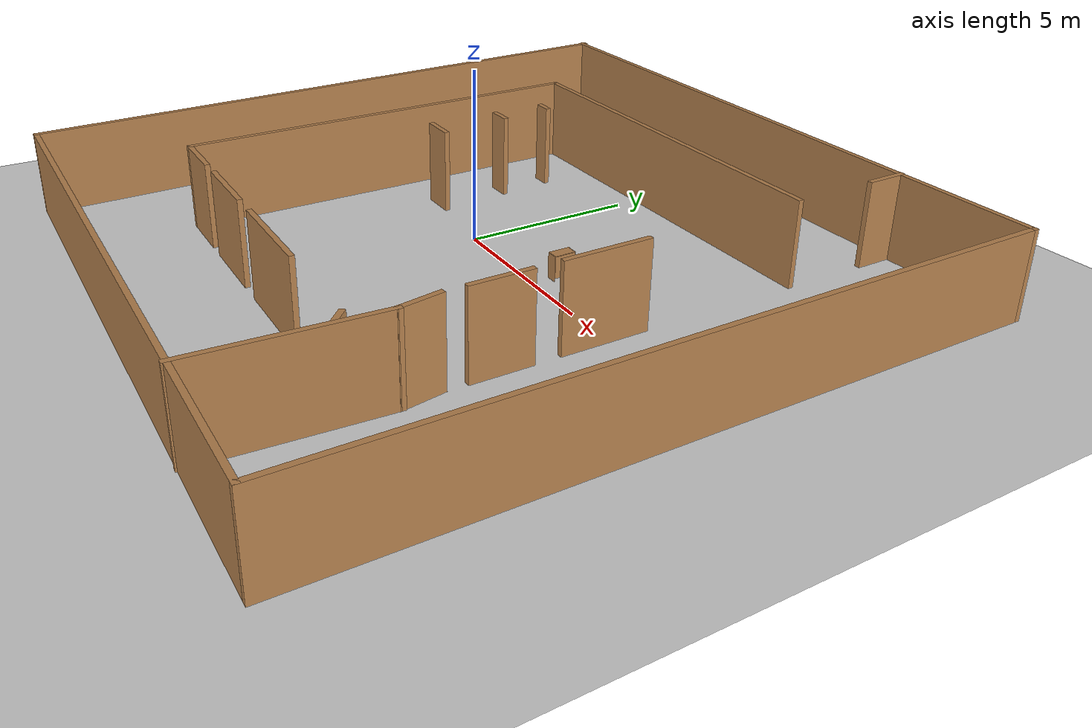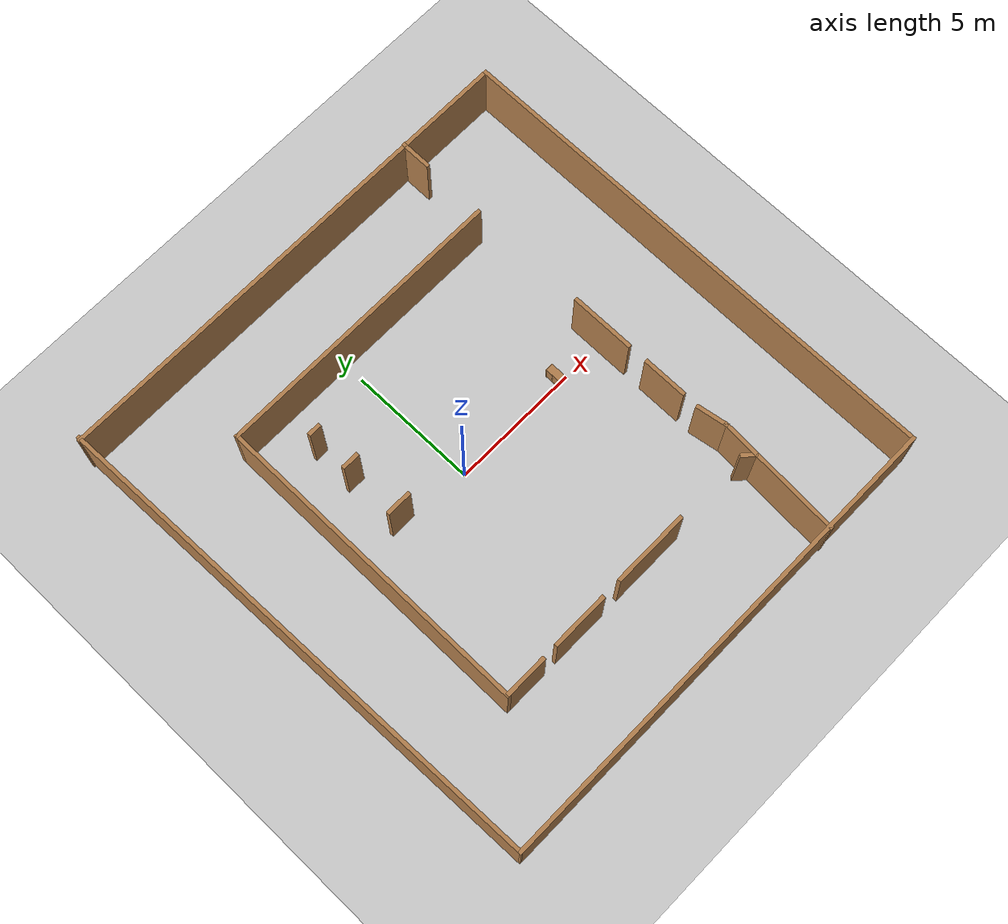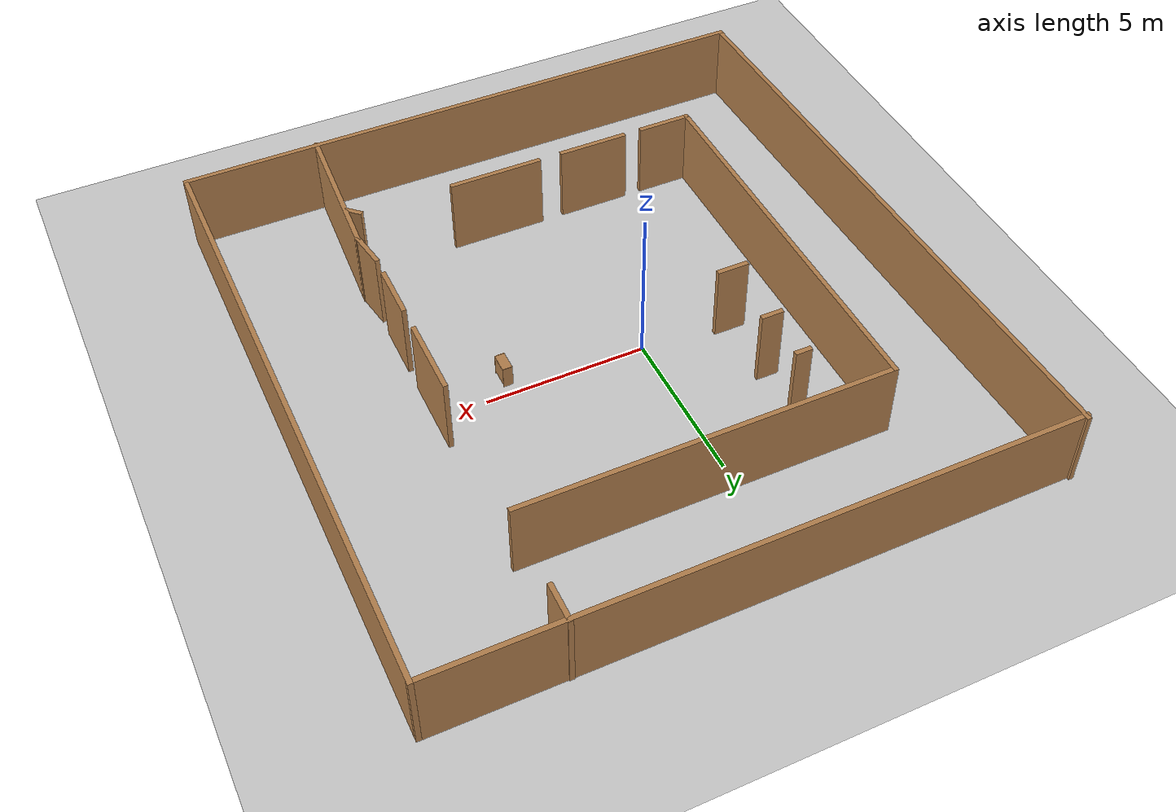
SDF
<sdf version="1.6">
 <world name="default">
  <physics name="dart_1ms" default="1" type="dart">
   <max_step_size>0.001</max_step_size>
   <real_time_factor>1</real_time_factor>
   <real_time_update_rate>1000</real_time_update_rate>
  </physics>
  <physics name="dart_2ms" default="0" type="dart">
   <max_step_size>0.002</max_step_size>
   <real_time_factor>1</real_time_factor>
   <real_time_update_rate>500</real_time_update_rate>
  </physics>
  <physics name="dart_3ms" default="0" type="dart">
   <max_step_size>0.003</max_step_size>
   <real_time_factor>1</real_time_factor>
   <real_time_update_rate>333</real_time_update_rate>
  </physics>
  <physics name="ode_1ms" default="0" type="ode">
   <max_step_size>0.001</max_step_size>
   <real_time_factor>1</real_time_factor>
   <real_time_update_rate>1000</real_time_update_rate>
  </physics>
  <physics name="ode_2ms" default="0" type="ode">
   <max_step_size>0.002</max_step_size>
   <real_time_factor>1</real_time_factor>
   <real_time_update_rate>500</real_time_update_rate>
  </physics>
  <physics name="ode_3ms" default="0" type="ode">
   <max_step_size>0.003</max_step_size>
   <real_time_factor>1</real_time_factor>
   <real_time_update_rate>333</real_time_update_rate>
  </physics>
  <light name="sun" type="directional">
   <pose>0 0 10 0 -0 0</pose>
   <diffuse>0.8 0.8 0.8 1</diffuse>
   <specular>0.2 0.2 0.2 1</specular>
   <attenuation>
    <range>1000</range>
    <constant>0.9</constant>
    <linear>0.01</linear>
    <quadratic>0.001</quadratic>
   </attenuation>
   <direction>-0.5 0.1 -0.9</direction>
  </light>
  <model name="ground_plane">
   <static>1</static>
   <link name="link">
    <collision name="collision">
     <geometry><plane><normal>0 0 1</normal><size>100 100</size></plane></geometry>
     <surface>
      <contact><collide_bitmask>65535</collide_bitmask></contact>
      <friction><ode><mu>100</mu><mu2>50</mu2></ode></friction>
     </surface>
    </collision>
    <visual name="visual">
     <cast_shadows>0</cast_shadows>
     <geometry><plane><normal>0 0 1</normal><size>100 100</size></plane></geometry>
     <material>
      <script><uri>file://media/materials/scripts/gazebo.material</uri><name>Gazebo/Grey</name></script>
     </material>
    </visual>
   </link>
  </model>
  <gravity>0 0 -9.8</gravity>
  <magnetic_field>6e-06 2.3e-05 -4.2e-05</magnetic_field>
  <atmosphere type="adiabatic"/>
  <physics name="default_physics" default="0" type="ode">
   <max_step_size>0.001</max_step_size>
   <real_time_factor>1</real_time_factor>
   <real_time_update_rate>1000</real_time_update_rate>
  </physics>
  <scene><ambient>0.4 0.4 0.4 1</ambient><background>0.7 0.7 0.7 1</background><shadows>1</shadows></scene>
  <spherical_coordinates>
   <surface_model>EARTH_WGS84</surface_model>
   <latitude_deg>0</latitude_deg>
   <longitude_deg>0</longitude_deg>
   <elevation>0</elevation>
   <heading_deg>0</heading_deg>
  </spherical_coordinates>
  <model name="cabinet_door">
   <link name="cabinet">
    <pose>0 0 0.35 0 -0 0</pose>
    <inertial>
     <mass>16</mass>
     <inertia><ixx>1.59</ixx><ixy>0</ixy><ixz>0</ixz><iyy>1.12</iyy><iyz>0</iyz><izz>0.91</izz></inertia>
    </inertial>
    <collision name="back">
     <pose>-0.14 0 0.035 0 -0 0</pose>
     <geometry><box><size>0.015 0.585 0.6</size></box></geometry>
    </collision>
    <visual name="visual1">
     <pose>-0.14 0 0.035 0 -0 0</pose>
     <geometry><box><size>0.015 0.585 0.6</size></box></geometry>
     <material>
      <script><uri>file://media/materials/scripts/gazebo.material</uri><name>Gazebo/Wood</name></script>
     </material>
    </visual>
    <collision name="left_side">
     <pose>0 -0.2925 0 0 -0 0</pose>
     <geometry><box><size>0.3 0.015 0.7</size></box></geometry>
    </collision>
    <visual name="visual2">
     <pose>0 -0.2925 0 0 -0 0</pose>
     <geometry><box><size>0.3 0.015 0.7</size></box></geometry>
     <material>
      <script><uri>file://media/materials/scripts/gazebo.material</uri><name>Gazebo/Wood</name></script>
     </material>
    </visual>
    <collision name="right_side">
     <pose>0 0.2925 0 0 -0 0</pose>
     <geometry><box><size>0.3 0.015 0.7</size></box></geometry>
    </collision>
    <visual name="visual3">
     <pose>0 0.2925 0 0 -0 0</pose>
     <geometry><box><size>0.3 0.015 0.7</size></box></geometry>
     <material>
      <script><uri>file://media/materials/scripts/gazebo.material</uri><name>Gazebo/Wood</name></script>
     </material>
    </visual>
    <collision name="bottom">
     <pose>-0.002 0 -0.2525 0 -0 0</pose>
     <geometry><box><size>0.26 0.57 0.015</size></box></geometry>
    </collision>
    <visual name="visual4">
     <pose>-0.002 0 -0.2525 0 -0 0</pose>
     <geometry><box><size>0.26 0.57 0.015</size></box></geometry>
     <material>
      <script><uri>file://media/materials/scripts/gazebo.material</uri><name>Gazebo/Wood</name></script>
     </material>
    </visual>
    <collision name="top">
     <pose>0 0 0.3425 0 -0 0</pose>
     <geometry><box><size>0.3 0.57 0.015</size></box></geometry>
    </collision>
    <visual name="visual5">
     <pose>0 0 0.3425 0 -0 0</pose>
     <geometry><box><size>0.3 0.57 0.015</size></box></geometry>
     <material>
      <script><uri>file://media/materials/scripts/gazebo.material</uri><name>Gazebo/Wood</name></script>
     </material>
    </visual>
    <collision name="middle_shelf">
     <pose>-0.002 0 0.0475 0 -0 0</pose>
     <geometry><box><size>0.26 0.57 0.015</size></box></geometry>
    </collision>
    <visual name="visual6">
     <pose>-0.002 0 0.0475 0 -0 0</pose>
     <geometry><box><size>0.26 0.57 0.015</size></box></geometry>
     <material>
      <script><uri>file://media/materials/scripts/gazebo.material</uri><name>Gazebo/Wood</name></script>
     </material>
    </visual>
    <collision name="low_front">
     <pose>0.115 0 -0.3025 0 -0 0</pose>
     <geometry><box><size>0.015 0.57 0.09</size></box></geometry>
    </collision>
    <visual name="visual7">
     <pose>0.115 0 -0.3025 0 -0 0</pose>
     <geometry><box><size>0.015 0.57 0.09</size></box></geometry>
     <material>
      <script><uri>file://media/materials/scripts/gazebo.material</uri><name>Gazebo/Wood</name></script>
     </material>
    </visual>
   </link>
   <link name="right_door">
    <pose>0.135 0.2835 0.3875 0 -0 0</pose>
    <inertial>
     <mass>1.7</mass>
     <pose>0 -0.141 0 0 -0 0</pose>
     <inertia><ixx>0.06</ixx><ixy>0</ixy><ixz>0</ixz><iyy>0.49</iyy><iyz>0</iyz><izz>0.111</izz></inertia>
    </inertial>
    <collision name="right_face">
     <pose>0 -0.141 0 0 -0 0</pose>
     <geometry><box><size>0.015 0.282 0.595</size></box></geometry>
    </collision>
    <visual name="visual8">
     <pose>0 -0.141 0 0 -0 0</pose>
     <geometry><box><size>0.015 0.282 0.595</size></box></geometry>
     <material>
      <script><uri>file://media/materials/scripts/gazebo.material</uri><name>Gazebo/Wood</name></script>
     </material>
    </visual>
    <collision name="right_handle">
     <pose>0.04304 -0.2555 0 0 -0 0</pose>
     <geometry><box><size>0.005 0.005 0.136</size></box></geometry>
    </collision>
    <visual name="visual9">
     <pose>0.04304 -0.2555 0 0 -0 0</pose>
     <geometry><box><size>0.005 0.005 0.136</size></box></geometry>
     <material>
      <script><uri>file://media/materials/scripts/gazebo.material</uri><name>Gazebo/Wood</name></script>
     </material>
    </visual>
    <collision name="right_handle_up">
     <pose>0.02475 -0.2555 0.0656 0 -0 0</pose>
     <geometry><box><size>0.04 0.005 0.005</size></box></geometry>
    </collision>
    <visual name="visual10">
     <pose>0.02475 -0.2555 0.0656 0 -0 0</pose>
     <geometry><box><size>0.04 0.005 0.005</size></box></geometry>
     <material>
      <script><uri>file://media/materials/scripts/gazebo.material</uri><name>Gazebo/Wood</name></script>
     </material>
    </visual>
    <collision name="right_handle_bo">
     <pose>0.02475 -0.2555 -0.06542 0 -0 0</pose>
     <geometry><box><size>0.04 0.005 0.005</size></box></geometry>
    </collision>
    <visual name="visual11">
     <pose>0.02475 -0.2555 -0.06542 0 -0 0</pose>
     <geometry><box><size>0.04 0.005 0.005</size></box></geometry>
     <material>
      <script><uri>file://media/materials/scripts/gazebo.material</uri><name>Gazebo/Wood</name></script>
     </material>
    </visual>
   </link>
   <joint name="right_joint" type="revolute">
    <parent>cabinet</parent>
    <child>right_door</child>
    <axis>
     <xyz>0 0 1</xyz>
     <limit><lower>-0.001</lower><upper>1.58</upper></limit>
     <dynamics>
      <damping>0.5</damping>
      <friction>0.1</friction>
      <spring_reference>0</spring_reference>
      <spring_stiffness>0</spring_stiffness>
     </dynamics>
     <use_parent_model_frame>1</use_parent_model_frame>
    </axis>
   </joint>
   <link name="left_door">
    <pose>0.135 -0.2835 0.3875 0 -0 0</pose>
    <inertial>
     <mass>1</mass>
     <pose>0 0.141 0 0 -0 0</pose>
     <inertia><ixx>0.06</ixx><ixy>0</ixy><ixz>0</ixz><iyy>0.49</iyy><iyz>0</iyz><izz>0.111</izz></inertia>
    </inertial>
    <collision name="left_face">
     <pose>0 0.141 0 0 -0 0</pose>
     <geometry><box><size>0.015 0.282 0.595</size></box></geometry>
    </collision>
    <visual name="visual12">
     <pose>0 0.141 0 0 -0 0</pose>
     <geometry><box><size>0.015 0.282 0.595</size></box></geometry>
     <material>
      <script><uri>file://media/materials/scripts/gazebo.material</uri><name>Gazebo/Wood</name></script>
     </material>
    </visual>
    <collision name="left_handle">
     <pose>0.04304 0.2555 0 0 -0 0</pose>
     <geometry><box><size>0.005 0.005 0.136</size></box></geometry>
    </collision>
    <visual name="visual13">
     <pose>0.04304 0.2555 0 0 -0 0</pose>
     <geometry><box><size>0.005 0.005 0.136</size></box></geometry>
     <material>
      <script><uri>file://media/materials/scripts/gazebo.material</uri><name>Gazebo/Wood</name></script>
     </material>
    </visual>
    <collision name="left_handle_up">
     <pose>0.02475 0.2555 0.0656 0 -0 0</pose>
     <geometry><box><size>0.04 0.005 0.005</size></box></geometry>
    </collision>
    <visual name="visual14">
     <pose>0.02475 0.2555 0.0656 0 -0 0</pose>
     <geometry><box><size>0.04 0.005 0.005</size></box></geometry>
     <material>
      <script><uri>file://media/materials/scripts/gazebo.material</uri><name>Gazebo/Wood</name></script>
     </material>
    </visual>
    <collision name="left_handle_bo">
     <pose>0.02475 0.2555 -0.06542 0 -0 0</pose>
     <geometry><box><size>0.04 0.005 0.005</size></box></geometry>
    </collision>
    <visual name="visual15">
     <pose>0.02475 0.2555 -0.06542 0 -0 0</pose>
     <geometry><box><size>0.04 0.005 0.005</size></box></geometry>
     <material>
      <script><uri>file://media/materials/scripts/gazebo.material</uri><name>Gazebo/Wood</name></script>
     </material>
    </visual>
   </link>
   <joint name="left_joint" type="revolute">
    <parent>cabinet</parent>
    <child>left_door</child>
    <axis>
     <xyz>0 0 1</xyz>
     <limit><lower>-1.58</lower><upper>0.001</upper></limit>
     <dynamics>
      <damping>0.5</damping>
      <friction>0.1</friction>
      <spring_reference>0</spring_reference>
      <spring_stiffness>0</spring_stiffness>
     </dynamics>
     <use_parent_model_frame>1</use_parent_model_frame>
    </axis>
   </joint>
   <pose>4.42268 0.022909 0.775 0 0 -3.13964</pose>
  </model>
  <model name="beer">
   <link name="link">
    <pose>0 0 0.115 0 -0 0</pose>
    <inertial>
     <mass>0.39</mass>
     <inertia><ixx>0.00058</ixx><ixy>0</ixy><ixz>0</ixz><iyy>0.00058</iyy><iyz>0</iyz><izz>0.00019</izz></inertia>
    </inertial>
    <collision name="collision">
     <geometry><cylinder><radius>0.055</radius><length>0.23</length></cylinder></geometry>
    </collision>
    <visual name="visual">
     <geometry><cylinder><radius>0.055</radius><length>0.23</length></cylinder></geometry>
     <material>
      <script>
       <uri>model://beer/materials/scripts</uri>
       <uri>model://beer/materials/textures</uri>
       <name>Beer/Diffuse</name>
      </script>
     </material>
    </visual>
   </link>
   <pose>4.40793 -0.104125 0.88 0 -0 0.039527</pose>
  </model>
  <model name="kondziu">
   <pose>1.07037 -0.43982 0 0 -0 0</pose>
   <link name="Wall_30">
    <collision name="Wall_30_Collision">
     <geometry><box><size>4.93371 0.15 2.5</size></box></geometry>
     <pose>0 0 1.25 0 -0 0</pose>
    </collision>
    <visual name="Wall_30_Visual">
     <pose>0 0 1.25 0 -0 0</pose>
     <geometry><box><size>4.93371 0.15 2.5</size></box></geometry>
     <material>
      <script><uri>file://media/materials/scripts/gazebo.material</uri><name>Gazebo/Wood</name></script>
      <ambient>1 1 1 1</ambient>
     </material>
     <meta><layer>0</layer></meta>
    </visual>
    <pose>5.49896 -7.46627 0 0 -0 -1.62981</pose>
   </link>
   <link name="Wall_34">
    <collision name="Wall_34_Collision">
     <geometry><box><size>2.5 0.15 2.5</size></box></geometry>
     <pose>0 0 1.25 0 -0 0</pose>
    </collision>
    <visual name="Wall_34_Visual">
     <pose>0 0 1.25 0 -0 0</pose>
     <geometry><box><size>2.5 0.15 2.5</size></box></geometry>
     <material>
      <script><uri>file://media/materials/scripts/gazebo.material</uri><name>Gazebo/Wood</name></script>
      <ambient>1 1 1 1</ambient>
     </material>
     <meta><layer>0</layer></meta>
    </visual>
    <pose>5.45512 0.314373 0 0 -0 1.5708</pose>
   </link>
   <link name="Wall_461">
    <collision name="Wall_461_Collision">
     <geometry><box><size>0.523 0.15 2.5</size></box></geometry>
     <pose>0 0 1.25 0 -0 0</pose>
    </collision>
    <visual name="Wall_461_Visual">
     <pose>0 0 1.25 0 -0 0</pose>
     <geometry><box><size>0.523 0.15 2.5</size></box></geometry>
     <material>
      <script><uri>file://media/materials/scripts/gazebo.material</uri><name>Gazebo/Wood</name></script>
      <ambient>1 1 1 1</ambient>
     </material>
     <meta><layer>0</layer></meta>
    </visual>
    <pose>-3.93675 4.51969 0 0 -0 0</pose>
   </link>
   <link name="Wall_463">
    <collision name="Wall_463_Collision">
     <geometry><box><size>0.7 0.15 2.5</size></box></geometry>
     <pose>0 0 1.25 0 -0 0</pose>
    </collision>
    <visual name="Wall_463_Visual">
     <pose>0 0 1.25 0 -0 0</pose>
     <geometry><box><size>0.7 0.15 2.5</size></box></geometry>
     <material>
      <script><uri>file://media/materials/scripts/gazebo.material</uri><name>Gazebo/Wood</name></script>
      <ambient>1 1 1 1</ambient>
     </material>
     <meta><layer>0</layer></meta>
    </visual>
    <pose>-3.86937 2.90008 0 0 -0 3.14159</pose>
   </link>
   <link name="Wall_465">
    <collision name="Wall_465_Collision">
     <geometry><box><size>1 0.15 2.5</size></box></geometry>
     <pose>0 0 1.25 0 -0 0</pose>
    </collision>
    <visual name="Wall_465_Visual">
     <pose>0 0 1.25 0 -0 0</pose>
     <geometry><box><size>1 0.15 2.5</size></box></geometry>
     <material>
      <script><uri>file://media/materials/scripts/gazebo.material</uri><name>Gazebo/Wood</name></script>
      <ambient>1 1 1 1</ambient>
     </material>
     <meta><layer>0</layer></meta>
    </visual>
    <pose>-3.78953 0.741713 0 0 -0 3.14159</pose>
   </link>
   <link name="Wall_469">
    <collision name="Wall_469_Collision">
     <geometry><box><size>1.24885 0.15 2.5</size></box></geometry>
     <pose>0 0 1.25 0 -0 0</pose>
    </collision>
    <visual name="Wall_469_Visual">
     <pose>0 0 1.25 0 -0 0</pose>
     <geometry><box><size>1.24885 0.15 2.5</size></box></geometry>
     <material>
      <script><uri>file://media/materials/scripts/gazebo.material</uri><name>Gazebo/Wood</name></script>
      <ambient>1 1 1 1</ambient>
     </material>
     <meta><layer>0</layer></meta>
    </visual>
    <pose>5.54083 -4.54523 0 0 -0 -1.40506</pose>
   </link>
   <link name="Wall_471">
    <collision name="Wall_471_Collision">
     <geometry><box><size>11.5 0.15 2.5</size></box></geometry>
     <pose>0 0 1.25 0 -0 0</pose>
    </collision>
    <visual name="Wall_471_Visual">
     <pose>0 0 1.25 0 -0 0</pose>
     <geometry><box><size>11.5 0.15 2.5</size></box></geometry>
     <material>
      <script><uri>file://media/materials/scripts/gazebo.material</uri><name>Gazebo/Wood</name></script>
      <ambient>1 1 1 1</ambient>
     </material>
     <meta><layer>0</layer></meta>
    </visual>
    <pose>-0.179904 6.17965 0 0 -0 3.14159</pose>
   </link>
   <link name="Wall_475">
    <collision name="Wall_475_Collision">
     <geometry><box><size>18.75 0.15 2.5</size></box></geometry>
     <pose>0 0 1.25 0 -0 0</pose>
    </collision>
    <visual name="Wall_475_Visual">
     <pose>0 0 1.25 0 -0 0</pose>
     <geometry><box><size>18.75 0.15 2.5</size></box></geometry>
     <material>
      <script><uri>file://media/materials/scripts/gazebo.material</uri><name>Gazebo/Wood</name></script>
      <ambient>1 1 1 1</ambient>
     </material>
     <meta><layer>0</layer></meta>
    </visual>
    <pose>0.25 -9.8173 0 0 -0 0</pose>
   </link>
   <link name="Wall_476">
    <collision name="Wall_476_Collision">
     <geometry><box><size>19.75 0.15 2.5</size></box></geometry>
     <pose>0 0 1.25 0 -0 0</pose>
    </collision>
    <visual name="Wall_476_Visual">
     <pose>0 0 1.25 0 -0 0</pose>
     <geometry><box><size>19.75 0.15 2.5</size></box></geometry>
     <material>
      <script><uri>file://media/materials/scripts/gazebo.material</uri><name>Gazebo/Wood</name></script>
      <ambient>1 1 1 1</ambient>
     </material>
     <meta><layer>0</layer></meta>
    </visual>
    <pose>9.55 -0.017302 0 0 -0 1.5708</pose>
   </link>
   <link name="Wall_477">
    <collision name="Wall_477_Collision">
     <geometry><box><size>19.25 0.15 2.5</size></box></geometry>
     <pose>0 0 1.25 0 -0 0</pose>
    </collision>
    <visual name="Wall_477_Visual">
     <pose>0 0 1.25 0 -0 0</pose>
     <geometry><box><size>19.25 0.15 2.5</size></box></geometry>
     <material>
      <script><uri>file://media/materials/scripts/gazebo.material</uri><name>Gazebo/Wood</name></script>
      <ambient>1 1 1 1</ambient>
     </material>
     <meta><layer>0</layer></meta>
    </visual>
    <pose>-0 9.7827 0 0 -0 3.14159</pose>
   </link>
   <link name="Wall_481">
    <collision name="Wall_481_Collision">
     <geometry><box><size>1.25 0.15 2.5</size></box></geometry>
     <pose>0 0 1.25 0 -0 0</pose>
    </collision>
    <visual name="Wall_481_Visual">
     <pose>0 0 1.25 0 -0 0</pose>
     <geometry><box><size>1.25 0.15 2.5</size></box></geometry>
     <material>
      <script><uri>file://media/materials/scripts/gazebo.material</uri><name>Gazebo/Wood</name></script>
      <ambient>1 1 1 1</ambient>
     </material>
     <meta><layer>0</layer></meta>
    </visual>
    <pose>5.53159 9.25799 0 0 -0 -1.5708</pose>
   </link>
   <link name="Wall_483">
    <collision name="Wall_483_Collision">
     <geometry><box><size>1.75 0.15 2.5</size></box></geometry>
     <pose>0 0 1.25 0 -0 0</pose>
    </collision>
    <visual name="Wall_483_Visual">
     <pose>0 0 1.25 0 -0 0</pose>
     <geometry><box><size>1.75 0.15 2.5</size></box></geometry>
     <material>
      <script><uri>file://media/materials/scripts/gazebo.material</uri><name>Gazebo/Wood</name></script>
      <ambient>1 1 1 1</ambient>
     </material>
     <meta><layer>0</layer></meta>
    </visual>
    <pose>5.45638 -2.52298 0 0 -0 -1.5708</pose>
   </link>
   <link name="Wall_485">
    <collision name="Wall_485_Collision">
     <geometry><box><size>12.5 0.15 2.5</size></box></geometry>
     <pose>0 0 1.25 0 -0 0</pose>
    </collision>
    <visual name="Wall_485_Visual">
     <pose>0 0 1.25 0 -0 0</pose>
     <geometry><box><size>12.5 0.15 2.5</size></box></geometry>
     <material>
      <script><uri>file://media/materials/scripts/gazebo.material</uri><name>Gazebo/Wood</name></script>
      <ambient>1 1 1 1</ambient>
     </material>
     <meta><layer>0</layer></meta>
    </visual>
    <pose>-5.8549 0.004647 0 0 -0 -1.5708</pose>
   </link>
   <link name="Wall_488">
    <collision name="Wall_488_Collision">
     <geometry><box><size>1.75 0.15 2.5</size></box></geometry>
     <pose>0 0 1.25 0 -0 0</pose>
    </collision>
    <visual name="Wall_488_Visual">
     <pose>0 0 1.25 0 -0 0</pose>
     <geometry><box><size>1.75 0.15 2.5</size></box></geometry>
     <material>
      <script><uri>file://media/materials/scripts/gazebo.material</uri><name>Gazebo/Wood</name></script>
      <ambient>1 1 1 1</ambient>
     </material>
     <meta><layer>0</layer></meta>
    </visual>
    <pose>-5.0549 -6.17035 0 0 -0 0</pose>
   </link>
   <link name="Wall_490">
    <collision name="Wall_490_Collision">
     <geometry><box><size>2.25 0.15 2.5</size></box></geometry>
     <pose>0 0 1.25 0 -0 0</pose>
    </collision>
    <visual name="Wall_490_Visual">
     <pose>0 0 1.25 0 -0 0</pose>
     <geometry><box><size>2.25 0.15 2.5</size></box></geometry>
     <material>
      <script><uri>file://media/materials/scripts/gazebo.material</uri><name>Gazebo/Wood</name></script>
      <ambient>1 1 1 1</ambient>
     </material>
     <meta><layer>0</layer></meta>
    </visual>
    <pose>-2.5342 -6.16392 0 0 -0 0</pose>
   </link>
   <link name="Wall_492">
    <collision name="Wall_492_Collision">
     <geometry><box><size>3 0.15 2.5</size></box></geometry>
     <pose>0 0 1.25 0 -0 0</pose>
    </collision>
    <visual name="Wall_492_Visual">
     <pose>0 0 1.25 0 -0 0</pose>
     <geometry><box><size>3 0.15 2.5</size></box></geometry>
     <material>
      <script><uri>file://media/materials/scripts/gazebo.material</uri><name>Gazebo/Wood</name></script>
      <ambient>1 1 1 1</ambient>
     </material>
     <meta><layer>0</layer></meta>
    </visual>
    <pose>0.783686 -6.1575 0 0 -0 0</pose>
   </link>
   <link name="Wall_495">
    <collision name="Wall_495_Collision">
     <geometry><box><size>0.592834 0.15 2.5</size></box></geometry>
     <pose>0 0 1.25 0 -0 0</pose>
    </collision>
    <visual name="Wall_495_Visual">
     <pose>0 0 1.25 0 -0 0</pose>
     <geometry><box><size>0.592834 0.15 2.5</size></box></geometry>
     <material>
      <script><uri>file://media/materials/scripts/gazebo.material</uri><name>Gazebo/Wood</name></script>
      <ambient>1 1 1 1</ambient>
     </material>
     <meta><layer>0</layer></meta>
    </visual>
    <pose>5.35867 -6.32191 0 0 -0 -0.753884</pose>
   </link>
   <link name="Wall_5">
    <collision name="Wall_5_Collision">
     <geometry><box><size>19.8291 0.15 2.5</size></box></geometry>
     <pose>0 0 1.25 0 -0 0</pose>
    </collision>
    <visual name="Wall_5_Visual">
     <pose>0 0 1.25 0 -0 0</pose>
     <geometry><box><size>19.8291 0.15 2.5</size></box></geometry>
     <material>
      <script><uri>file://media/materials/scripts/gazebo.material</uri><name>Gazebo/Wood</name></script>
      <ambient>1 1 1 1</ambient>
     </material>
     <meta><layer>0</layer></meta>
    </visual>
    <pose>-9.27767 0.019618 0 0 -0 1.59394</pose>
   </link>
   <static>1</static>
  </model>
 </world>
</sdf>
